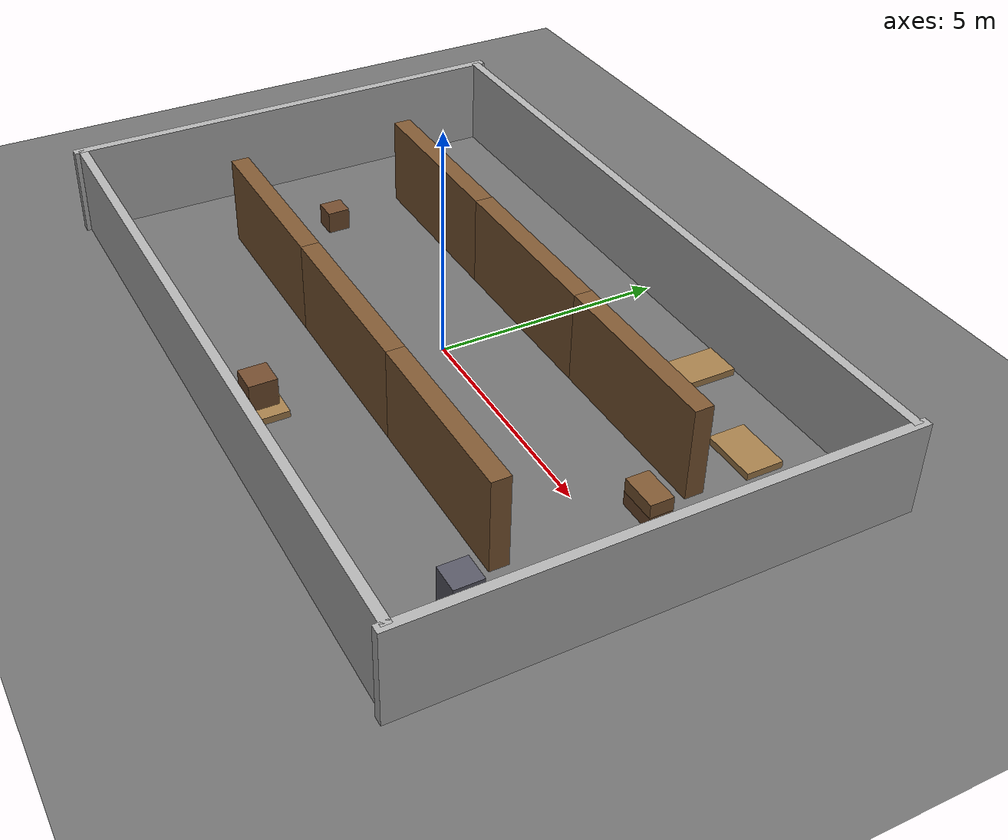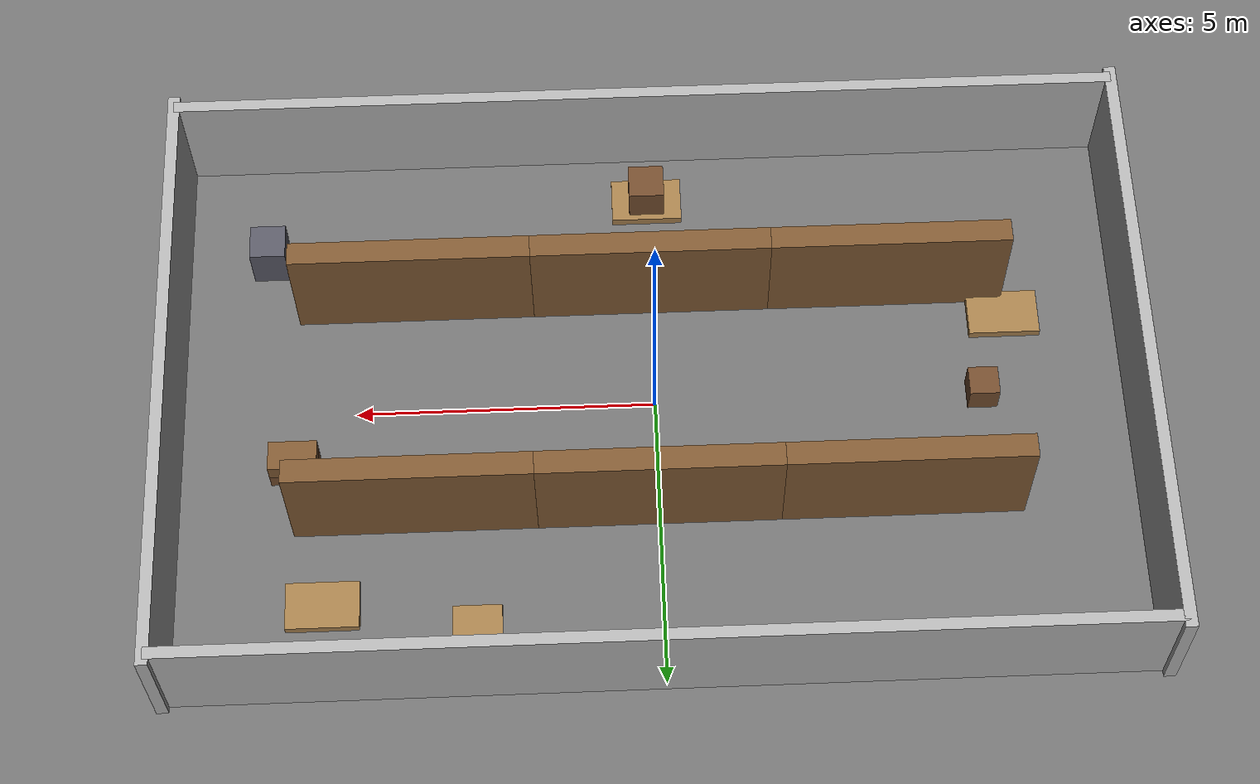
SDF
<?xml version="1.0"?>
<sdf version="1.9">
  <world name="warehouse">

    <!-- System plugins -->
    <plugin filename="gz-sim-physics-system" name="gz::sim::v8::systems::Physics"/>
    <plugin filename="gz-sim-scene-broadcaster-system" name="gz::sim::v8::systems::SceneBroadcaster"/>
    <plugin filename="gz-sim-user-commands-system" name="gz::sim::v8::systems::UserCommands"/>
    <plugin filename="gz-sim-sensors-system" name="gz::sim::v8::systems::Sensors">
      <render_engine>ogre2</render_engine>
    </plugin>

    <!-- Physics -->
    <physics name="1ms" type="ode">
      <real_time_update_rate>1000</real_time_update_rate>
      <max_step_size>0.001</max_step_size>
      <real_time_factor>1</real_time_factor>
      <ode>
        <solver>
          <type>quick</type>
          <iters>150</iters>
          <precon_iters>0</precon_iters>
          <sor>1.4</sor>
        </solver>
        <constraints>
          <cfm>1e-5</cfm>
          <erp>0.2</erp>
          <contact_max_correcting_vel>2000</contact_max_correcting_vel>
          <contact_surface_layer>0.01</contact_surface_layer>
        </constraints>
      </ode>
    </physics>

    <!-- Scene / Lighting -->
    <scene>
      <ambient>0.3 0.3 0.35 1</ambient>
      <background>0.2 0.2 0.25 1</background>
      <shadows>false</shadows>
    </scene>

    <light name="ceiling_1" type="directional">
      <cast_shadows>false</cast_shadows>
      <pose>-3 0 8 0 0 0</pose>
      <diffuse>0.9 0.9 0.85 1</diffuse>
      <specular>0.1 0.1 0.1 1</specular>
      <direction>0 0 -1</direction>
    </light>

    <light name="ceiling_2" type="directional">
      <cast_shadows>false</cast_shadows>
      <pose>3 0 8 0 0 0</pose>
      <diffuse>0.9 0.9 0.85 1</diffuse>
      <specular>0.1 0.1 0.1 1</specular>
      <direction>0 0 -1</direction>
    </light>

    <!-- Ground plane -->
    <model name="ground_plane">
      <static>true</static>
      <link name="link">
        <collision name="collision">
          <geometry><plane><normal>0 0 1</normal><size>100 100</size></plane></geometry>
          <surface><friction><ode><mu>1</mu><mu2>1</mu2></ode></friction></surface>
        </collision>
        <visual name="visual">
          <cast_shadows>false</cast_shadows>
          <geometry><plane><normal>0 0 1</normal><size>100 100</size></plane></geometry>
          <material>
            <ambient>0.4 0.4 0.4 1</ambient>
            <diffuse>0.45 0.45 0.45 1</diffuse>
          </material>
        </visual>
      </link>
    </model>

    <!-- ============================================================
         OUTER WALLS  (16 m x 10 m, 0.20 m thick, 2.0 m tall)
         ============================================================ -->

    <model name="wall_north">
      <static>true</static>
      <pose>0 5.0 1.0 0 0 0</pose>
      <link name="link">
        <collision name="collision"><geometry><box><size>16.0 0.2 2.0</size></box></geometry></collision>
        <visual name="visual"><geometry><box><size>16.0 0.2 2.0</size></box></geometry>
          <material><ambient>0.7 0.7 0.7 1</ambient><diffuse>0.7 0.7 0.7 1</diffuse></material>
        </visual>
      </link>
    </model>

    <model name="wall_south">
      <static>true</static>
      <pose>0 -5.0 1.0 0 0 0</pose>
      <link name="link">
        <collision name="collision"><geometry><box><size>16.0 0.2 2.0</size></box></geometry></collision>
        <visual name="visual"><geometry><box><size>16.0 0.2 2.0</size></box></geometry>
          <material><ambient>0.7 0.7 0.7 1</ambient><diffuse>0.7 0.7 0.7 1</diffuse></material>
        </visual>
      </link>
    </model>

    <model name="wall_east">
      <static>true</static>
      <pose>8.0 0 1.0 0 0 0</pose>
      <link name="link">
        <collision name="collision"><geometry><box><size>0.2 10.4 2.0</size></box></geometry></collision>
        <visual name="visual"><geometry><box><size>0.2 10.4 2.0</size></box></geometry>
          <material><ambient>0.7 0.7 0.7 1</ambient><diffuse>0.7 0.7 0.7 1</diffuse></material>
        </visual>
      </link>
    </model>

    <model name="wall_west">
      <static>true</static>
      <pose>-8.0 0 1.0 0 0 0</pose>
      <link name="link">
        <collision name="collision"><geometry><box><size>0.2 10.4 2.0</size></box></geometry></collision>
        <visual name="visual"><geometry><box><size>0.2 10.4 2.0</size></box></geometry>
          <material><ambient>0.7 0.7 0.7 1</ambient><diffuse>0.7 0.7 0.7 1</diffuse></material>
        </visual>
      </link>
    </model>

    <model name="shelf_a">
      <static>true</static>
      <pose>-4.0 2.0 1.0 0 0 0</pose>
      <link name="link">
        <collision name="collision"><geometry><box><size>4.0 0.4 2.0</size></box></geometry></collision>
        <visual name="visual"><geometry><box><size>4.0 0.4 2.0</size></box></geometry>
          <material><ambient>0.4 0.3 0.2 1</ambient><diffuse>0.5 0.35 0.2 1</diffuse></material>
        </visual>
      </link>
    </model>

    <model name="shelf_b">
      <static>true</static>
      <pose>0.0 2.0 1.0 0 0 0</pose>
      <link name="link">
        <collision name="collision"><geometry><box><size>4.0 0.4 2.0</size></box></geometry></collision>
        <visual name="visual"><geometry><box><size>4.0 0.4 2.0</size></box></geometry>
          <material><ambient>0.4 0.3 0.2 1</ambient><diffuse>0.5 0.35 0.2 1</diffuse></material>
        </visual>
      </link>
    </model>

    <model name="shelf_c">
      <static>true</static>
      <pose>4.0 2.0 1.0 0 0 0</pose>
      <link name="link">
        <collision name="collision"><geometry><box><size>4.0 0.4 2.0</size></box></geometry></collision>
        <visual name="visual"><geometry><box><size>4.0 0.4 2.0</size></box></geometry>
          <material><ambient>0.4 0.3 0.2 1</ambient><diffuse>0.5 0.35 0.2 1</diffuse></material>
        </visual>
      </link>
    </model>

    <!-- ============================================================
         SHELF ROWS — Lower row (y = -2.0)
         ============================================================ -->

    <model name="shelf_d">
      <static>true</static>
      <pose>-4.0 -2.0 1.0 0 0 0</pose>
      <link name="link">
        <collision name="collision"><geometry><box><size>4.0 0.4 2.0</size></box></geometry></collision>
        <visual name="visual"><geometry><box><size>4.0 0.4 2.0</size></box></geometry>
          <material><ambient>0.4 0.3 0.2 1</ambient><diffuse>0.5 0.35 0.2 1</diffuse></material>
        </visual>
      </link>
    </model>

    <model name="shelf_e">
      <static>true</static>
      <pose>0.0 -2.0 1.0 0 0 0</pose>
      <link name="link">
        <collision name="collision"><geometry><box><size>4.0 0.4 2.0</size></box></geometry></collision>
        <visual name="visual"><geometry><box><size>4.0 0.4 2.0</size></box></geometry>
          <material><ambient>0.4 0.3 0.2 1</ambient><diffuse>0.5 0.35 0.2 1</diffuse></material>
        </visual>
      </link>
    </model>

    <model name="shelf_f">
      <static>true</static>
      <pose>4.0 -2.0 1.0 0 0 0</pose>
      <link name="link">
        <collision name="collision"><geometry><box><size>4.0 0.4 2.0</size></box></geometry></collision>
        <visual name="visual"><geometry><box><size>4.0 0.4 2.0</size></box></geometry>
          <material><ambient>0.4 0.3 0.2 1</ambient><diffuse>0.5 0.35 0.2 1</diffuse></material>
        </visual>
      </link>
    </model>

    <!-- Pallet near loading dock (southwest) -->
    <model name="pallet_1">
      <static>true</static>
      <pose>-6.0 -1.5 0.075 0 0 0</pose>
      <link name="link">
        <collision name="collision"><geometry><box><size>1.2 0.8 0.15</size></box></geometry></collision>
        <visual name="visual"><geometry><box><size>1.2 0.8 0.15</size></box></geometry>
          <material><ambient>0.6 0.45 0.25 1</ambient><diffuse>0.65 0.5 0.3 1</diffuse></material>
        </visual>
      </link>
    </model>

    <!-- Pallet with stacked crate (centre aisle) -->
    <model name="pallet_2">
      <static>true</static>
      <pose>0.0 -4.0 0.075 0 0 0</pose>
      <link name="link">
        <collision name="collision"><geometry><box><size>1.2 0.8 0.15</size></box></geometry></collision>
        <visual name="visual"><geometry><box><size>1.2 0.8 0.15</size></box></geometry>
          <material><ambient>0.6 0.45 0.25 1</ambient><diffuse>0.65 0.5 0.3 1</diffuse></material>
        </visual>
      </link>
    </model>
    <model name="crate_on_pallet_2">
      <static>true</static>
      <pose>0.0 -4.0 0.45 0 0 0</pose>
      <link name="link">
        <collision name="collision"><geometry><box><size>0.6 0.6 0.6</size></box></geometry></collision>
        <visual name="visual"><geometry><box><size>0.6 0.6 0.6</size></box></geometry>
          <material><ambient>0.35 0.25 0.15 1</ambient><diffuse>0.45 0.3 0.18 1</diffuse></material>
        </visual>
      </link>
    </model>

    <!-- Pallet in staging area (east side) -->
    <model name="pallet_3">
      <static>true</static>
      <pose>5.5 3.5 0.075 0 0 0</pose>
      <link name="link">
        <collision name="collision"><geometry><box><size>1.2 0.8 0.15</size></box></geometry></collision>
        <visual name="visual"><geometry><box><size>1.2 0.8 0.15</size></box></geometry>
          <material><ambient>0.6 0.45 0.25 1</ambient><diffuse>0.65 0.5 0.3 1</diffuse></material>
        </visual>
      </link>
    </model>

    <!-- Pallet near north wall -->
    <model name="pallet_4">
      <static>true</static>
      <pose>3.0 4.2 0.075 0 0 0</pose>
      <link name="link">
        <collision name="collision"><geometry><box><size>0.8 1.2 0.15</size></box></geometry></collision>
        <visual name="visual"><geometry><box><size>0.8 1.2 0.15</size></box></geometry>
          <material><ambient>0.6 0.45 0.25 1</ambient><diffuse>0.65 0.5 0.3 1</diffuse></material>
        </visual>
      </link>
    </model>

    <!-- ============================================================
         CRATES — loose boxes in the warehouse
         ============================================================ -->

    <!-- Small crate near shelf_a -->
    <model name="crate_1">
      <static>true</static>
      <pose>-5.5 0.0 0.25 0 0 0</pose>
      <link name="link">
        <collision name="collision"><geometry><box><size>0.5 0.5 0.5</size></box></geometry></collision>
        <visual name="visual"><geometry><box><size>0.5 0.5 0.5</size></box></geometry>
          <material><ambient>0.35 0.25 0.15 1</ambient><diffuse>0.45 0.3 0.18 1</diffuse></material>
        </visual>
      </link>
    </model>

    <!-- Tall crate near east wall -->
    <model name="crate_2">
      <static>true</static>
      <pose>6.5 -3.0 0.4 0 0 0</pose>
      <link name="link">
        <collision name="collision"><geometry><box><size>0.6 0.6 0.8</size></box></geometry></collision>
        <visual name="visual"><geometry><box><size>0.6 0.6 0.8</size></box></geometry>
          <material><ambient>0.3 0.3 0.35 1</ambient><diffuse>0.35 0.35 0.4 1</diffuse></material>
        </visual>
      </link>
    </model>

    <!-- Stack of two flat crates near staging -->
    <model name="crate_3_bottom">
      <static>true</static>
      <pose>6.0 1.0 0.15 0 0 0</pose>
      <link name="link">
        <collision name="collision"><geometry><box><size>0.8 0.5 0.3</size></box></geometry></collision>
        <visual name="visual"><geometry><box><size>0.8 0.5 0.3</size></box></geometry>
          <material><ambient>0.35 0.25 0.15 1</ambient><diffuse>0.45 0.3 0.18 1</diffuse></material>
        </visual>
      </link>
    </model>
    <model name="crate_3_top">
      <static>true</static>
      <pose>6.0 1.0 0.45 0 0 0</pose>
      <link name="link">
        <collision name="collision"><geometry><box><size>0.8 0.5 0.3</size></box></geometry></collision>
        <visual name="visual"><geometry><box><size>0.8 0.5 0.3</size></box></geometry>
          <material><ambient>0.4 0.28 0.16 1</ambient><diffuse>0.5 0.35 0.2 1</diffuse></material>
        </visual>
      </link>
    </model>

  </world>
</sdf>
